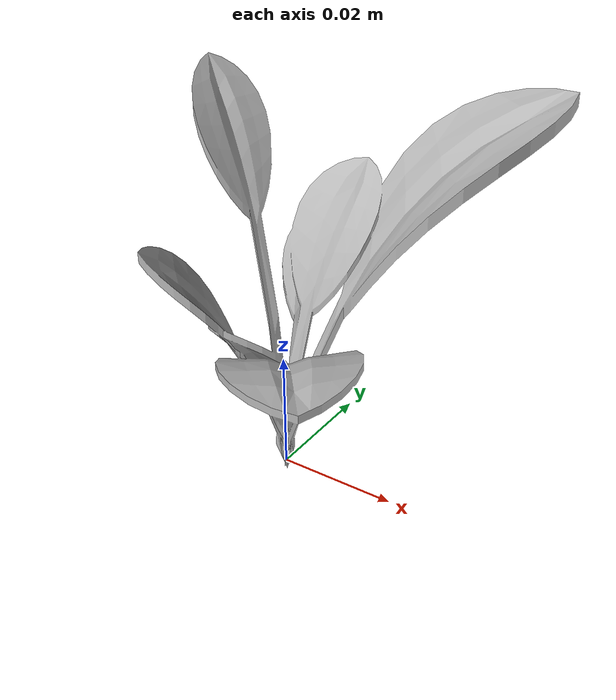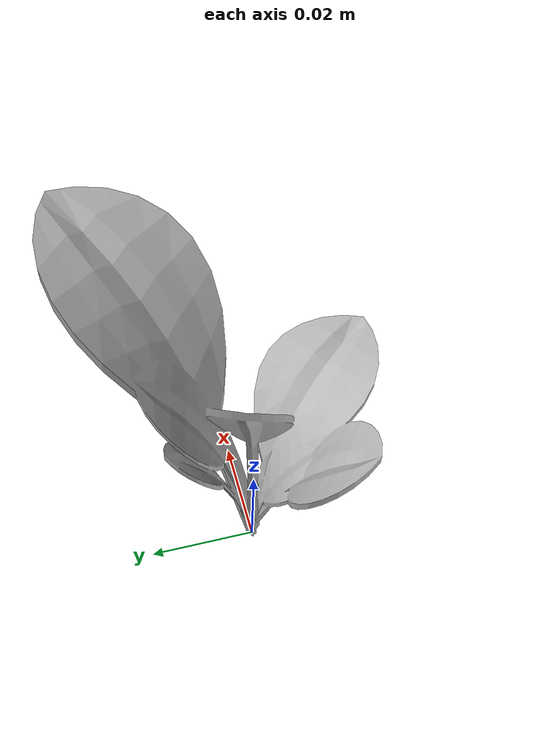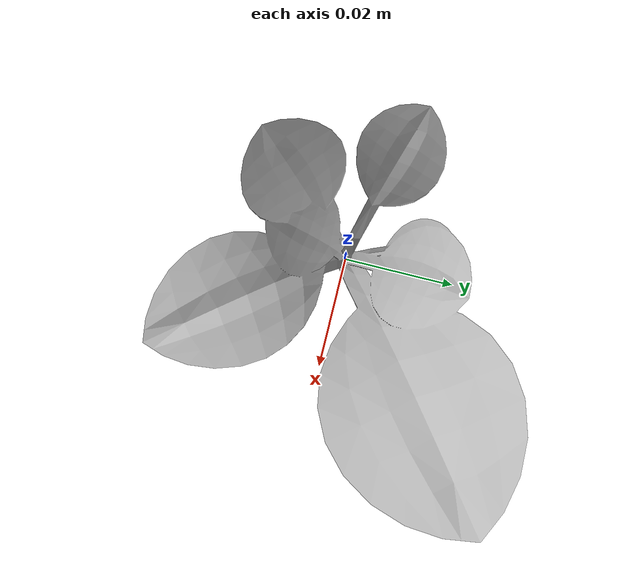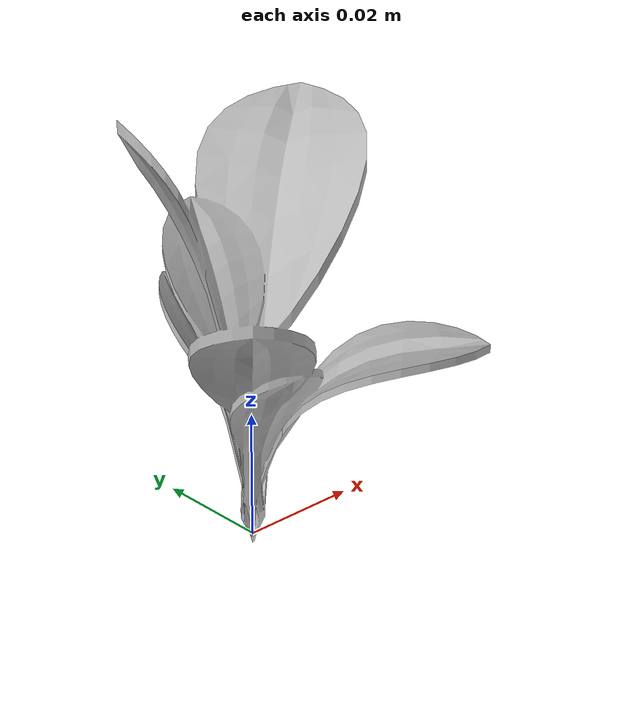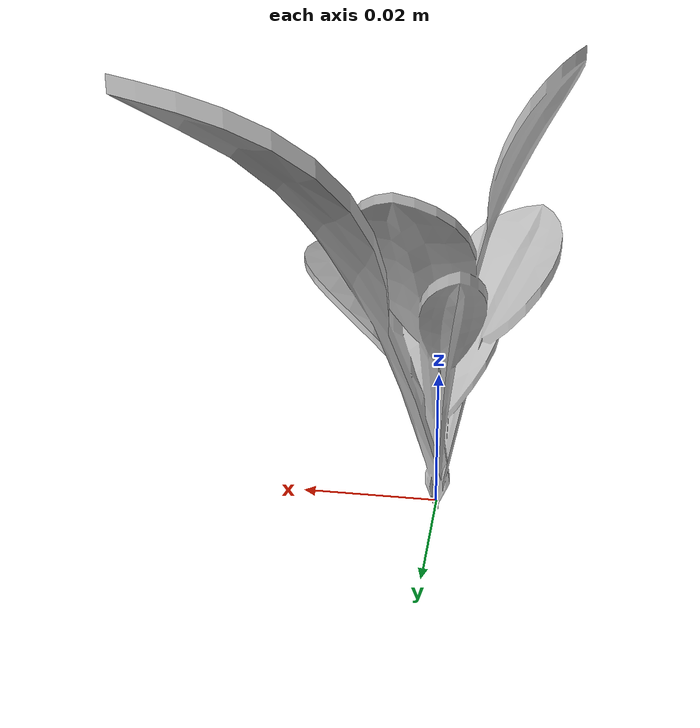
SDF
<sdf version="1.6">
  <model name="sugar_beet_3">
    <static>true</static>
    <link name="body">
      <visual name="visual">
        <geometry>
          <mesh>
            <uri>file:///sugar_beet_3/media/sugar_beet.dae</uri>
          </mesh>
        </geometry>
      </visual>
    </link>
  </model>
</sdf>
